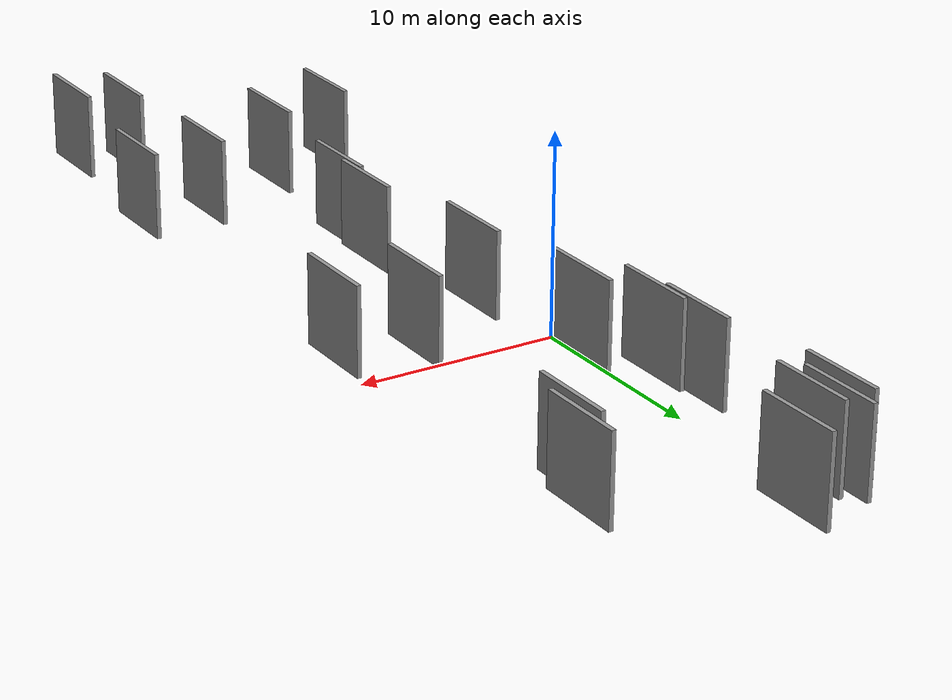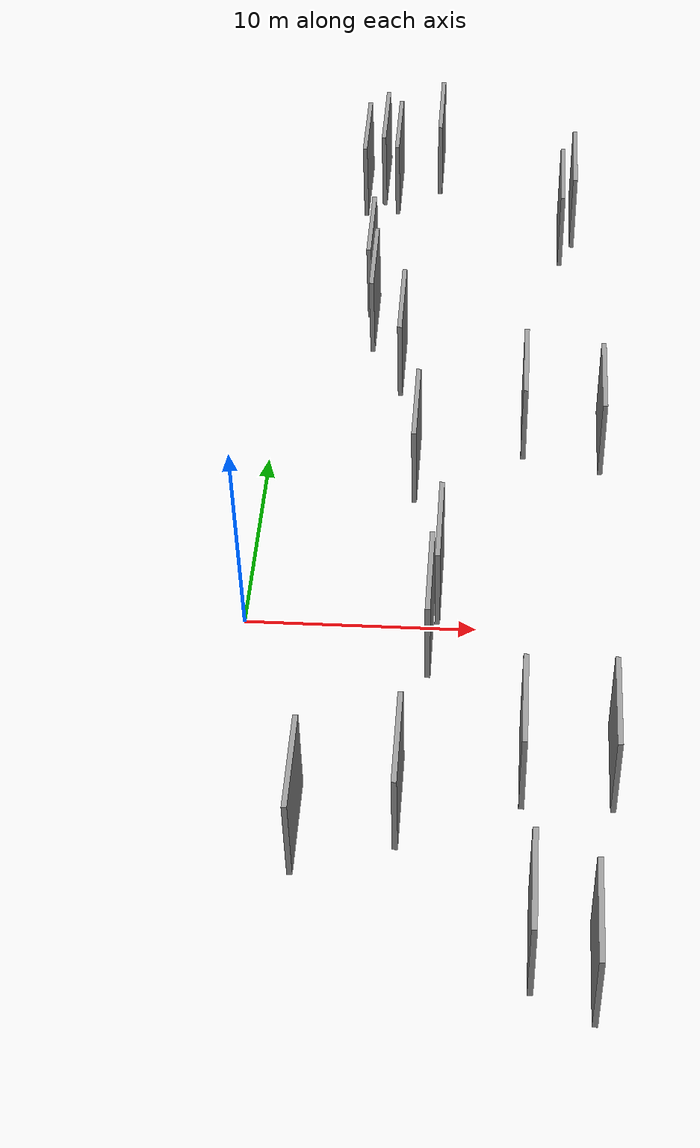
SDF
<sdf version="1.6">
 <world name="default">
  <scene>
   <sky><clouds><speed>12</speed></clouds></sky>
   <ambient>0.4 0.4 0.4 1</ambient>
   <background>0.7 0.7 0.7 1</background>
   <shadows>1</shadows>
  </scene>
  <gravity>0 0 -9.8066</gravity>
  <magnetic_field>6e-06 2.3e-05 -4.2e-05</magnetic_field>
  <physics default="0" name="default_physics" type="ode">
   <ode>
    <solver>
     <type>quick</type>
     <iters>10</iters>
     <sor>1.0</sor>
     <use_dynamic_moi_rescaling>0</use_dynamic_moi_rescaling>
    </solver>
    <constraints>
     <cfm>0</cfm>
     <erp>0.2</erp>
     <contact_max_correcting_vel>100</contact_max_correcting_vel>
     <contact_surface_layer>0.001</contact_surface_layer>
    </constraints>
   </ode>
   <max_step_size>0.004</max_step_size>
   <real_time_factor>1</real_time_factor>
   <real_time_update_rate>250</real_time_update_rate>
  </physics>
  <light name="sun" type="directional">
   <pose>0 0 10 0 0 0</pose>
   <diffuse>0.8 0.8 0.8 1</diffuse>
   <specular>0.2 0.2 0.2 1</specular>
   <attenuation>
    <range>1000</range>
    <constant>0.9</constant>
    <linear>0.01</linear>
    <quadratic>0.001</quadratic>
   </attenuation>
   <direction>-0.5 0.1 -0.9</direction>
  </light>
  <model name="grey_wall_1">
   <static>1</static>
   <pose>13.9097 22.5149 5.0 0.000000 0.000000 1.570796</pose>
   <link name="link">
    <pose>0 0 2.00 0 0 0</pose>
    <collision name="collision"><geometry><box><size>4.00 0.2 4.00</size></box></geometry></collision>
    <visual name="visual">
     <cast_shadows>0</cast_shadows>
     <geometry><box><size>4.00 0.2 4.00</size></box></geometry>
     <material>
      <script>
       <uri>model://grey_wall/materials/scripts</uri>
       <uri>model://grey_wall/materials/textures</uri>
       <name>vrc/grey_wall</name>
      </script>
     </material>
    </visual>
   </link>
  </model>
  <model name="grey_wall_2">
   <static>1</static>
   <pose>12.3704 -18.4030 5.0 0.000000 0.000000 1.570796</pose>
   <link name="link">
    <pose>0 0 2.00 0 0 0</pose>
    <collision name="collision"><geometry><box><size>4.00 0.2 4.00</size></box></geometry></collision>
    <visual name="visual">
     <cast_shadows>0</cast_shadows>
     <geometry><box><size>4.00 0.2 4.00</size></box></geometry>
     <material>
      <script>
       <uri>model://grey_wall/materials/scripts</uri>
       <uri>model://grey_wall/materials/textures</uri>
       <name>vrc/grey_wall</name>
      </script>
     </material>
    </visual>
   </link>
  </model>
  <model name="grey_wall_3">
   <static>1</static>
   <pose>7.4770 -12.8125 5.0 0.000000 0.000000 1.570796</pose>
   <link name="link">
    <pose>0 0 2.00 0 0 0</pose>
    <collision name="collision"><geometry><box><size>4.00 0.2 4.00</size></box></geometry></collision>
    <visual name="visual">
     <cast_shadows>0</cast_shadows>
     <geometry><box><size>4.00 0.2 4.00</size></box></geometry>
     <material>
      <script>
       <uri>model://grey_wall/materials/scripts</uri>
       <uri>model://grey_wall/materials/textures</uri>
       <name>vrc/grey_wall</name>
      </script>
     </material>
    </visual>
   </link>
  </model>
  <model name="grey_wall_4">
   <static>1</static>
   <pose>6.2312 11.3395 5.0 0.000000 0.000000 1.570796</pose>
   <link name="link">
    <pose>0 0 2.00 0 0 0</pose>
    <collision name="collision"><geometry><box><size>4.00 0.2 4.00</size></box></geometry></collision>
    <visual name="visual">
     <cast_shadows>0</cast_shadows>
     <geometry><box><size>4.00 0.2 4.00</size></box></geometry>
     <material>
      <script>
       <uri>model://grey_wall/materials/scripts</uri>
       <uri>model://grey_wall/materials/textures</uri>
       <name>vrc/grey_wall</name>
      </script>
     </material>
    </visual>
   </link>
  </model>
  <model name="grey_wall_5">
   <static>1</static>
   <pose>7.3326 26.5367 5.0 0.000000 0.000000 1.570796</pose>
   <link name="link">
    <pose>0 0 2.00 0 0 0</pose>
    <collision name="collision"><geometry><box><size>4.00 0.2 4.00</size></box></geometry></collision>
    <visual name="visual">
     <cast_shadows>0</cast_shadows>
     <geometry><box><size>4.00 0.2 4.00</size></box></geometry>
     <material>
      <script>
       <uri>model://grey_wall/materials/scripts</uri>
       <uri>model://grey_wall/materials/textures</uri>
       <name>vrc/grey_wall</name>
      </script>
     </material>
    </visual>
   </link>
  </model>
  <model name="grey_wall_6">
   <static>1</static>
   <pose>15.0741 6.7073 5.0 0.000000 0.000000 1.570796</pose>
   <link name="link">
    <pose>0 0 2.00 0 0 0</pose>
    <collision name="collision"><geometry><box><size>4.00 0.2 4.00</size></box></geometry></collision>
    <visual name="visual">
     <cast_shadows>0</cast_shadows>
     <geometry><box><size>4.00 0.2 4.00</size></box></geometry>
     <material>
      <script>
       <uri>model://grey_wall/materials/scripts</uri>
       <uri>model://grey_wall/materials/textures</uri>
       <name>vrc/grey_wall</name>
      </script>
     </material>
    </visual>
   </link>
  </model>
  <model name="grey_wall_7">
   <static>1</static>
   <pose>15.3123 -10.8016 5.0 0.000000 0.000000 1.570796</pose>
   <link name="link">
    <pose>0 0 2.00 0 0 0</pose>
    <collision name="collision"><geometry><box><size>4.00 0.2 4.00</size></box></geometry></collision>
    <visual name="visual">
     <cast_shadows>0</cast_shadows>
     <geometry><box><size>4.00 0.2 4.00</size></box></geometry>
     <material>
      <script>
       <uri>model://grey_wall/materials/scripts</uri>
       <uri>model://grey_wall/materials/textures</uri>
       <name>vrc/grey_wall</name>
      </script>
     </material>
    </visual>
   </link>
  </model>
  <model name="grey_wall_8">
   <static>1</static>
   <pose>11.7667 7.5031 5.0 0.000000 0.000000 1.570796</pose>
   <link name="link">
    <pose>0 0 2.00 0 0 0</pose>
    <collision name="collision"><geometry><box><size>4.00 0.2 4.00</size></box></geometry></collision>
    <visual name="visual">
     <cast_shadows>0</cast_shadows>
     <geometry><box><size>4.00 0.2 4.00</size></box></geometry>
     <material>
      <script>
       <uri>model://grey_wall/materials/scripts</uri>
       <uri>model://grey_wall/materials/textures</uri>
       <name>vrc/grey_wall</name>
      </script>
     </material>
    </visual>
   </link>
  </model>
  <model name="grey_wall_9">
   <static>1</static>
   <pose>7.2168 4.6454 5.0 0.000000 0.000000 1.570796</pose>
   <link name="link">
    <pose>0 0 2.00 0 0 0</pose>
    <collision name="collision"><geometry><box><size>4.00 0.2 4.00</size></box></geometry></collision>
    <visual name="visual">
     <cast_shadows>0</cast_shadows>
     <geometry><box><size>4.00 0.2 4.00</size></box></geometry>
     <material>
      <script>
       <uri>model://grey_wall/materials/scripts</uri>
       <uri>model://grey_wall/materials/textures</uri>
       <name>vrc/grey_wall</name>
      </script>
     </material>
    </visual>
   </link>
  </model>
  <model name="grey_wall_10">
   <static>1</static>
   <pose>4.5075 16.7109 5.0 0.000000 0.000000 1.570796</pose>
   <link name="link">
    <pose>0 0 2.00 0 0 0</pose>
    <collision name="collision"><geometry><box><size>4.00 0.2 4.00</size></box></geometry></collision>
    <visual name="visual">
     <cast_shadows>0</cast_shadows>
     <geometry><box><size>4.00 0.2 4.00</size></box></geometry>
     <material>
      <script>
       <uri>model://grey_wall/materials/scripts</uri>
       <uri>model://grey_wall/materials/textures</uri>
       <name>vrc/grey_wall</name>
      </script>
     </material>
    </visual>
   </link>
  </model>
  <model name="grey_wall_11">
   <static>1</static>
   <pose>3.7710 24.5595 5.0 0.000000 0.000000 1.570796</pose>
   <link name="link">
    <pose>0 0 2.00 0 0 0</pose>
    <collision name="collision"><geometry><box><size>4.00 0.2 4.00</size></box></geometry></collision>
    <visual name="visual">
     <cast_shadows>0</cast_shadows>
     <geometry><box><size>4.00 0.2 4.00</size></box></geometry>
     <material>
      <script>
       <uri>model://grey_wall/materials/scripts</uri>
       <uri>model://grey_wall/materials/textures</uri>
       <name>vrc/grey_wall</name>
      </script>
     </material>
    </visual>
   </link>
  </model>
  <model name="grey_wall_12">
   <static>1</static>
   <pose>3.8115 -14.0479 5.0 0.000000 0.000000 1.570796</pose>
   <link name="link">
    <pose>0 0 2.00 0 0 0</pose>
    <collision name="collision"><geometry><box><size>4.00 0.2 4.00</size></box></geometry></collision>
    <visual name="visual">
     <cast_shadows>0</cast_shadows>
     <geometry><box><size>4.00 0.2 4.00</size></box></geometry>
     <material>
      <script>
       <uri>model://grey_wall/materials/scripts</uri>
       <uri>model://grey_wall/materials/textures</uri>
       <name>vrc/grey_wall</name>
      </script>
     </material>
    </visual>
   </link>
  </model>
  <model name="grey_wall_13">
   <static>1</static>
   <pose>8.2517 -4.8424 5.0 0.000000 0.000000 1.570796</pose>
   <link name="link">
    <pose>0 0 2.00 0 0 0</pose>
    <collision name="collision"><geometry><box><size>4.00 0.2 4.00</size></box></geometry></collision>
    <visual name="visual">
     <cast_shadows>0</cast_shadows>
     <geometry><box><size>4.00 0.2 4.00</size></box></geometry>
     <material>
      <script>
       <uri>model://grey_wall/materials/scripts</uri>
       <uri>model://grey_wall/materials/textures</uri>
       <name>vrc/grey_wall</name>
      </script>
     </material>
    </visual>
   </link>
  </model>
  <model name="grey_wall_14">
   <static>1</static>
   <pose>5.3126 24.7505 5.0 0.000000 0.000000 1.570796</pose>
   <link name="link">
    <pose>0 0 2.00 0 0 0</pose>
    <collision name="collision"><geometry><box><size>4.00 0.2 4.00</size></box></geometry></collision>
    <visual name="visual">
     <cast_shadows>0</cast_shadows>
     <geometry><box><size>4.00 0.2 4.00</size></box></geometry>
     <material>
      <script>
       <uri>model://grey_wall/materials/scripts</uri>
       <uri>model://grey_wall/materials/textures</uri>
       <name>vrc/grey_wall</name>
      </script>
     </material>
    </visual>
   </link>
  </model>
  <model name="grey_wall_15">
   <static>1</static>
   <pose>4.7926 14.3018 5.0 0.000000 0.000000 1.570796</pose>
   <link name="link">
    <pose>0 0 2.00 0 0 0</pose>
    <collision name="collision"><geometry><box><size>4.00 0.2 4.00</size></box></geometry></collision>
    <visual name="visual">
     <cast_shadows>0</cast_shadows>
     <geometry><box><size>4.00 0.2 4.00</size></box></geometry>
     <material>
      <script>
       <uri>model://grey_wall/materials/scripts</uri>
       <uri>model://grey_wall/materials/textures</uri>
       <name>vrc/grey_wall</name>
      </script>
     </material>
    </visual>
   </link>
  </model>
  <model name="grey_wall_16">
   <static>1</static>
   <pose>11.9622 -10.8295 5.0 0.000000 0.000000 1.570796</pose>
   <link name="link">
    <pose>0 0 2.00 0 0 0</pose>
    <collision name="collision"><geometry><box><size>4.00 0.2 4.00</size></box></geometry></collision>
    <visual name="visual">
     <cast_shadows>0</cast_shadows>
     <geometry><box><size>4.00 0.2 4.00</size></box></geometry>
     <material>
      <script>
       <uri>model://grey_wall/materials/scripts</uri>
       <uri>model://grey_wall/materials/textures</uri>
       <name>vrc/grey_wall</name>
      </script>
     </material>
    </visual>
   </link>
  </model>
  <model name="grey_wall_17">
   <static>1</static>
   <pose>4.6201 25.5107 5.0 0.000000 0.000000 1.570796</pose>
   <link name="link">
    <pose>0 0 2.00 0 0 0</pose>
    <collision name="collision"><geometry><box><size>4.00 0.2 4.00</size></box></geometry></collision>
    <visual name="visual">
     <cast_shadows>0</cast_shadows>
     <geometry><box><size>4.00 0.2 4.00</size></box></geometry>
     <material>
      <script>
       <uri>model://grey_wall/materials/scripts</uri>
       <uri>model://grey_wall/materials/textures</uri>
       <name>vrc/grey_wall</name>
      </script>
     </material>
    </visual>
   </link>
  </model>
  <model name="grey_wall_18">
   <static>1</static>
   <pose>14.5381 -19.4769 5.0 0.000000 0.000000 1.570796</pose>
   <link name="link">
    <pose>0 0 2.00 0 0 0</pose>
    <collision name="collision"><geometry><box><size>4.00 0.2 4.00</size></box></geometry></collision>
    <visual name="visual">
     <cast_shadows>0</cast_shadows>
     <geometry><box><size>4.00 0.2 4.00</size></box></geometry>
     <material>
      <script>
       <uri>model://grey_wall/materials/scripts</uri>
       <uri>model://grey_wall/materials/textures</uri>
       <name>vrc/grey_wall</name>
      </script>
     </material>
    </visual>
   </link>
  </model>
  <model name="grey_wall_19">
   <static>1</static>
   <pose>8.5005 -2.0853 5.0 0.000000 0.000000 1.570796</pose>
   <link name="link">
    <pose>0 0 2.00 0 0 0</pose>
    <collision name="collision"><geometry><box><size>4.00 0.2 4.00</size></box></geometry></collision>
    <visual name="visual">
     <cast_shadows>0</cast_shadows>
     <geometry><box><size>4.00 0.2 4.00</size></box></geometry>
     <material>
      <script>
       <uri>model://grey_wall/materials/scripts</uri>
       <uri>model://grey_wall/materials/textures</uri>
       <name>vrc/grey_wall</name>
      </script>
     </material>
    </visual>
   </link>
  </model>
  <model name="grey_wall_20">
   <static>1</static>
   <pose>13.3295 21.0366 5.0 0.000000 0.000000 1.570796</pose>
   <link name="link">
    <pose>0 0 2.00 0 0 0</pose>
    <collision name="collision"><geometry><box><size>4.00 0.2 4.00</size></box></geometry></collision>
    <visual name="visual">
     <cast_shadows>0</cast_shadows>
     <geometry><box><size>4.00 0.2 4.00</size></box></geometry>
     <material>
      <script>
       <uri>model://grey_wall/materials/scripts</uri>
       <uri>model://grey_wall/materials/textures</uri>
       <name>vrc/grey_wall</name>
      </script>
     </material>
    </visual>
   </link>
  </model>
 </world>
</sdf>
